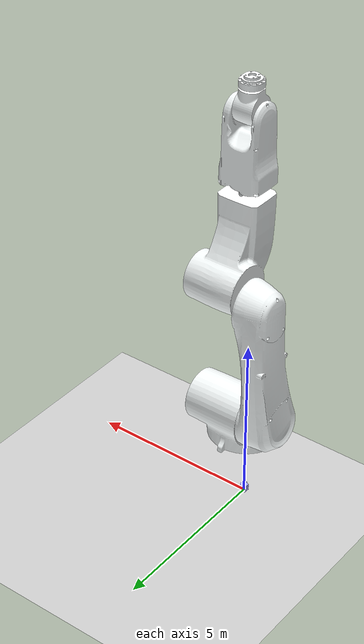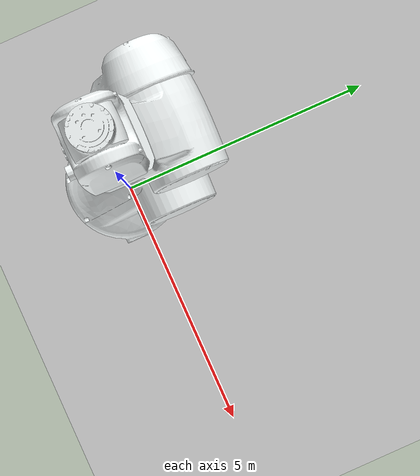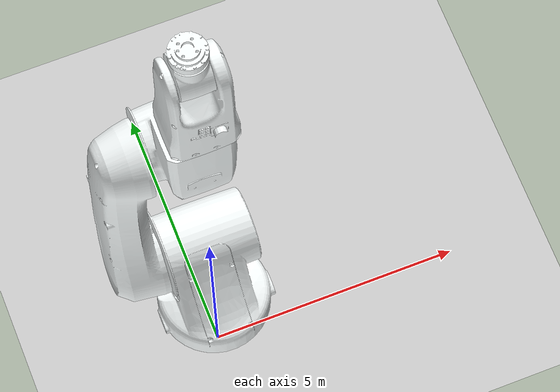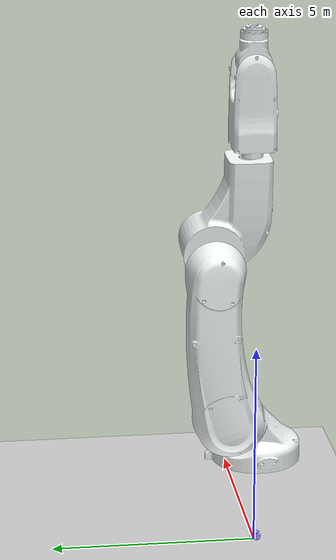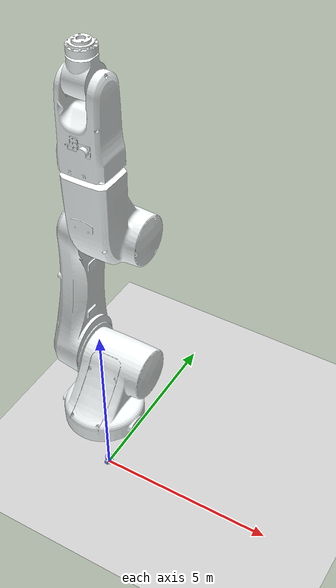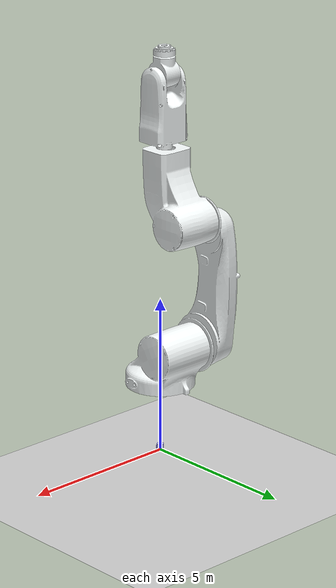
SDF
<sdf version='1.11'>
  <world name="car_world">
    <physics name="1ms" type="ignored">
        <max_step_size>0.001</max_step_size>
        <real_time_factor>1.0</real_time_factor>
    </physics>
    <plugin
        filename="gz-sim-physics-system"
        name="gz::sim::systems::Physics">
    </plugin>
    <plugin
        filename="gz-sim-user-commands-system"
        name="gz::sim::systems::UserCommands">
    </plugin>
    <plugin
        filename="gz-sim-scene-broadcaster-system"
        name="gz::sim::systems::SceneBroadcaster">
    </plugin>

    <light type="directional" name="sun">
        <cast_shadows>true</cast_shadows>
        <pose>0 0 10 0 0 0</pose>
        <diffuse>0.8 0.8 0.8 1</diffuse>
        <specular>0.2 0.2 0.2 1</specular>
        <attenuation>
            <range>1000</range>
            <constant>0.9</constant>
            <linear>0.01</linear>
            <quadratic>0.001</quadratic>
        </attenuation>
        <direction>-0.5 0.1 -0.9</direction>
    </light>

    <model name="ground_plane">
        <static>true</static>
        <link name="link">
            <collision name="collision">
            <geometry>
                <plane>
                <normal>0 0 1</normal>
                </plane>
            </geometry>
            </collision>
            <visual name="visual">
            <geometry>
                <plane>
                <normal>0 0 1</normal>
                <size>100 100</size>
                </plane>
            </geometry>
            <material>
                <ambient>0.8 0.8 0.8 1</ambient>
                <diffuse>0.8 0.8 0.8 1</diffuse>
                <specular>0.8 0.8 0.8 1</specular>
            </material>
            </visual>
        </link>
    </model>
    <model name='arctos'>
      <joint name='world_joint' type='fixed'>
        <pose relative_to='__model__'>0 0 0 0 0 0</pose>
        <parent>world</parent>
        <child>base_link</child>
      </joint>
      <link name='base_link'>
        <pose relative_to='world_joint'>0 0 0 0 0 0</pose>
        <inertial>
          <pose>-0.00047006000000000001 -0.012257000000000001 0.10022 0 0 0</pose>
          <mass>55.784999999999997</mass>
          <inertia>
            <ixx>0.39179000000000003</ixx>
            <ixy>-0.0027323</ixy>
            <ixz>-0.00075955</ixz>
            <iyy>0.32300000000000001</iyy>
            <iyz>-0.022558000000000002</iyz>
            <izz>0.34492</izz>
          </inertia>
        </inertial>
        <collision name='base_link_collision'>
          <pose>0 0 0 0 0 0</pose>
          <geometry>
            <mesh>
              <scale>1 1 1</scale>
              <uri>file:///home/nguyen/ros2_ws/src/ros2_arctos_HCMUT/arctos_description/meshes/base_link.STL</uri>
            </mesh>
          </geometry>
        </collision>
        <visual name='base_link_visual'>
          <pose>0 0 0 0 0 0</pose>
          <geometry>
            <mesh>
              <scale>1 1 1</scale>
              <uri>ile:///home/nguyen/ros2_ws/src/ros2_arctos_HCMUT/arctos_description/meshes/base_link.STL</uri>
            </mesh>
          </geometry>
          <material>
            <diffuse>0.627449989 0.627449989 1 1</diffuse>
            <ambient>0.627449989 0.627449989 1 1</ambient>
          </material>
        </visual>
      </link>
      <joint name='X_joint' type='revolute'>
        <pose relative_to='base_link'>0 0 0.183 0 0 0</pose>
        <parent>base_link</parent>
        <child>link_1</child>
        <axis>
          <xyz>0 0 1</xyz>
          <limit>
            <lower>-2.9670999999999998</lower>
            <upper>2.9670999999999998</upper>
            <effort>1</effort>
            <velocity>3.0543</velocity>
          </limit>
          <dynamics>
            <spring_reference>0</spring_reference>
            <spring_stiffness>0</spring_stiffness>
          </dynamics>
        </axis>
      </joint>
      <link name='link_1'>
        <pose relative_to='X_joint'>0 0 0 0 0 0</pose>
        <inertial>
          <pose>0.0075871000000000003 0.037339999999999998 0.10645 0 0 0</pose>
          <mass>44.267000000000003</mass>
          <inertia>
            <ixx>0.28548000000000001</ixx>
            <ixy>-0.012987</ixy>
            <ixz>-0.013929</ixz>
            <iyy>0.25047000000000003</iyy>
            <iyz>-0.073189000000000004</iyz>
            <izz>0.26167000000000001</izz>
          </inertia>
        </inertial>
        <collision name='link_1_collision'>
          <pose>0 0 0 0 0 0</pose>
          <geometry>
            <mesh>
              <scale>1 1 1</scale>
              <uri>ile:///home/nguyen/ros2_ws/src/ros2_arctos_HCMUT/arctos_description/meshes/link_1.STL</uri>
            </mesh>
          </geometry>
        </collision>
        <visual name='link_1_visual'>
          <pose>0 0 0 0 0 0</pose>
          <geometry>
            <mesh>
              <scale>1 1 1</scale>
              <uri>ile:///home/nguyen/ros2_ws/src/ros2_arctos_HCMUT/arctos_description/meshes/link_1.STL</uri>
            </mesh>
          </geometry>
          <material>
            <diffuse>0.980387509 1 1 1</diffuse>
            <ambient>0.980387509 1 1 1</ambient>
          </material>
        </visual>
      </link>
      <joint name='Y_joint' type='revolute'>
        <pose relative_to='link_1'>-0.048000000000000001 0.074999999999999997 0.14999999999999999 0 0 0</pose>
        <parent>link_1</parent>
        <child>link_2</child>
        <axis>
          <xyz>-1 0 0</xyz>
          <limit>
            <lower>-1.7453000000000001</lower>
            <upper>2.3561999999999999</upper>
            <effort>1</effort>
            <velocity>3.4906999999999999</velocity>
          </limit>
          <dynamics>
            <spring_reference>0</spring_reference>
            <spring_stiffness>0</spring_stiffness>
          </dynamics>
        </axis>
      </joint>
      <link name='link_2'>
        <pose relative_to='Y_joint'>0 0 0 0 0 0</pose>
        <inertial>
          <pose>-0.068043999999999993 0.021826000000000002 0.15762000000000001 0 0 0</pose>
          <mass>43.338999999999999</mass>
          <inertia>
            <ixx>0.97721999999999998</ixx>
            <ixy>0.00042244</ixy>
            <ixz>-0.021124</ixz>
            <iyy>0.93503999999999998</iyy>
            <iyz>-0.078229000000000007</iyz>
            <izz>0.099170999999999995</izz>
          </inertia>
        </inertial>
        <collision name='link_2_collision'>
          <pose>0 0 0 0 0 0</pose>
          <geometry>
            <mesh>
              <scale>1 1 1</scale>
              <uri>ile:///home/nguyen/ros2_ws/src/ros2_arctos_HCMUT/arctos_description/meshes/link_2.STL</uri>
            </mesh>
          </geometry>
        </collision>
        <visual name='link_2_visual'>
          <pose>0 0 0 0 0 0</pose>
          <geometry>
            <mesh>
              <scale>1 1 1</scale>
              <uri>ile:///home/nguyen/ros2_ws/src/ros2_arctos_HCMUT/arctos_description/meshes/link_2.STL</uri>
            </mesh>
          </geometry>
          <material>
            <diffuse>0.980387509 1 1 1</diffuse>
            <ambient>0.980387509 1 1 1</ambient>
          </material>
        </visual>
      </link>
      <joint name='Z_joint' type='revolute'>
        <pose relative_to='link_2'>0 0.029975999999999999 0.36376999999999998 0 0 0</pose>
        <parent>link_2</parent>
        <child>link_3</child>
        <axis>
          <xyz>-1 0 0</xyz>
          <limit>
            <lower>-2.0769000000000002</lower>
            <upper>2.9496064359999998</upper>
            <effort>1</effort>
            <velocity>3.4906999999999999</velocity>
          </limit>
          <dynamics>
            <spring_reference>0</spring_reference>
            <spring_stiffness>0</spring_stiffness>
          </dynamics>
        </axis>
      </joint>
      <link name='link_3'>
        <pose relative_to='Z_joint'>0 0 0 0 0 0</pose>
        <inertial>
          <pose>0.054746999999999997 -0.045777999999999999 0.060447000000000001 0 0 0</pose>
          <mass>37.594000000000001</mass>
          <inertia>
            <ixx>0.31727</ixx>
            <ixy>-0.0048815000000000004</ixy>
            <ixz>0.0065087000000000001</ixz>
            <iyy>0.26582</iyy>
            <iyz>0.088578000000000004</iyz>
            <izz>0.16116</izz>
          </inertia>
        </inertial>
        <collision name='link_3_collision'>
          <pose>0 0 0 0 0 0</pose>
          <geometry>
            <mesh>
              <scale>1 1 1</scale>
              <uri>ile:///home/nguyen/ros2_ws/src/ros2_arctos_HCMUT/arctos_description/meshes/link_3.STL</uri>
            </mesh>
          </geometry>
        </collision>
        <visual name='link_3_visual'>
          <pose>0 0 0 0 0 0</pose>
          <geometry>
            <mesh>
              <scale>1 1 1</scale>
              <uri>ile:///home/nguyen/ros2_ws/src/ros2_arctos_HCMUT/arctos_description/meshes/link_3.STL</uri>
            </mesh>
          </geometry>
          <material>
            <diffuse>0.980387509 1 1 1</diffuse>
            <ambient>0.980387509 1 1 1</ambient>
          </material>
        </visual>
      </link>
      <joint name='A_joint' type='revolute'>
        <pose relative_to='link_3'>0.048000000000000001 -0.089999999999999997 0.19800000000000001 0 0 0</pose>
        <parent>link_3</parent>
        <child>link_4</child>
        <axis>
          <xyz>0 0 1</xyz>
          <limit>
            <lower>-3.3161</lower>
            <upper>3.3161</upper>
            <effort>1</effort>
            <velocity>5.2359999999999998</velocity>
          </limit>
          <dynamics>
            <spring_reference>0</spring_reference>
            <spring_stiffness>0</spring_stiffness>
          </dynamics>
        </axis>
      </joint>
      <link name='link_4'>
        <pose relative_to='A_joint'>0 0 0 0 0 0</pose>
        <inertial>
          <pose>0.0051846000000000001 -0.00064605999999999995 0.10645 0 0 0</pose>
          <mass>14.917</mass>
          <inertia>
            <ixx>0.062769000000000005</ixx>
            <ixy>3.6977000000000002e-05</ixy>
            <ixz>-0.0018680000000000001</ixz>
            <iyy>0.069443000000000005</iyy>
            <iyz>-0.00032273000000000002</iyz>
            <izz>0.028683</izz>
          </inertia>
        </inertial>
        <collision name='link_4_collision'>
          <pose>0 0 0 0 0 0</pose>
          <geometry>
            <mesh>
              <scale>1 1 1</scale>
              <uri>ile:///home/nguyen/ros2_ws/src/ros2_arctos_HCMUT/arctos_description/meshes/link_4.STL</uri>
            </mesh>
          </geometry>
        </collision>
        <visual name='link_4_visual'>
          <pose>0 0 0 0 0 0</pose>
          <geometry>
            <mesh>
              <scale>1 1 1</scale>
              <uri>ile:///home/nguyen/ros2_ws/src/ros2_arctos_HCMUT/arctos_description/meshes/link_4.STL</uri>
            </mesh>
          </geometry>
          <material>
            <diffuse>0.980387509 1 1 1</diffuse>
            <ambient>0.980387509 1 1 1</ambient>
          </material>
        </visual>
      </link>
      <joint name='B_joint' type='revolute'>
        <pose relative_to='link_4'>0 0 0.20699999999999999 0 0 0</pose>
        <parent>link_4</parent>
        <child>link_5</child>
        <axis>
          <xyz>1 0 0</xyz>
          <limit>
            <lower>-2.0943999999999998</lower>
            <upper>2.0943999999999998</upper>
            <effort>1</effort>
            <velocity>5.2359999999999998</velocity>
          </limit>
          <dynamics>
            <spring_reference>0</spring_reference>
            <spring_stiffness>0</spring_stiffness>
          </dynamics>
        </axis>
      </joint>
      <link name='link_5'>
        <pose relative_to='B_joint'>0 0 0 0 0 0</pose>
        <inertial>
          <pose>-0.00049421999999999997 2.4246000000000002e-07 0.0067098000000000001 0 0 0</pose>
          <mass>0.34309000000000001</mass>
          <inertia>
            <ixx>0.00034995000000000002</ixx>
            <ixy>-1.2487e-09</ixy>
            <ixz>-1.1371000000000001e-06</ixz>
            <iyy>0.00030038999999999999</iyy>
            <iyz>-1.4302000000000001e-09</iyz>
            <izz>0.00022745</izz>
          </inertia>
        </inertial>
        <collision name='link_5_collision'>
          <pose>0 0 0 0 0 0</pose>
          <geometry>
            <mesh>
              <scale>1 1 1</scale>
              <uri>ile:///home/nguyen/ros2_ws/src/ros2_arctos_HCMUT/arctos_description/meshes/link_5.STL</uri>
            </mesh>
          </geometry>
        </collision>
        <visual name='link_5_visual'>
          <pose>0 0 0 0 0 0</pose>
          <geometry>
            <mesh>
              <scale>1 1 1</scale>
              <uri>ile:///home/nguyen/ros2_ws/src/ros2_arctos_HCMUT/arctos_description/meshes/link_5.STL</uri>
            </mesh>
          </geometry>
          <material>
            <diffuse>0.980387509 1 1 1</diffuse>
            <ambient>0.980387509 1 1 1</ambient>
          </material>
        </visual>
      </link>
      <joint name='C_joint' type='revolute'>
        <pose relative_to='link_5'>0 0 0.051999999999999998 0 0 0</pose>
        <parent>link_5</parent>
        <child>link_6</child>
        <axis>
          <xyz>0 0 1</xyz>
          <limit>
            <lower>-6.2831999999999999</lower>
            <upper>6.2831999999999999</upper>
            <effort>1</effort>
            <velocity>8.3775999999999993</velocity>
          </limit>
          <dynamics>
            <spring_reference>0</spring_reference>
            <spring_stiffness>0</spring_stiffness>
          </dynamics>
        </axis>
      </joint>
      <link name='link_6'>
        <pose relative_to='C_joint'>0 0 0 0 0 0</pose>
        <inertial>
          <pose>3.1971999999999998e-05 -5.2041999999999996e-18 0.011587 0 0 0</pose>
          <mass>0.068738999999999995</mass>
          <inertia>
            <ixx>2.0616999999999999e-05</ixx>
            <ixy>-1.6907e-20</ixy>
            <ixz>-2.8489999999999999e-08</ixz>
            <iyy>2.0452999999999999e-05</iyy>
            <iyz>2.0027e-21</iyz>
            <izz>3.4375999999999997e-05</izz>
          </inertia>
        </inertial>
        <collision name='link_6_collision'>
          <pose>0 0 0 0 0 0</pose>
          <geometry>
            <mesh>
              <scale>1 1 1</scale>
              <uri>ile:///home/nguyen/ros2_ws/src/ros2_arctos_HCMUT/arctos_description/meshes/link_6.STL</uri>
            </mesh>
          </geometry>
        </collision>
        <visual name='link_6_visual'>
          <pose>0 0 0 0 0 0</pose>
          <geometry>
            <mesh>
              <scale>1 1 1</scale>
              <uri>ile:///home/nguyen/ros2_ws/src/ros2_arctos_HCMUT/arctos_description/meshes/link_6.STL</uri>
            </mesh>
          </geometry>
          <material>
            <diffuse>0.980387509 1 1 1</diffuse>
            <ambient>0.980387509 1 1 1</ambient>
          </material>
        </visual>
      </link>
    </model>
  </world>
</sdf>
